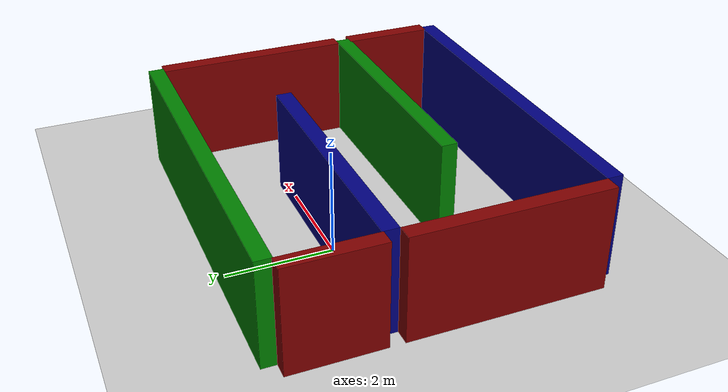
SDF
<sdf version="1.6">
 <world name="frsoty_world">
  <plugin name="ignition::gazebo::systems::TriggeredPublisher" filename="libignition-gazebo-triggered-publisher-system.so">
   <input type="ignition.msgs.Int32" topic="/keyboard/keypress"><match field="data">16777235</match></input>
   <output type="ignition.msgs.Twist" topic="/cmd_vel">linear: {x: 0.5}, angular: {z: 0.0}</output>
  </plugin>
  <plugin name="ignition::gazebo::systems::TriggeredPublisher" filename="libignition-gazebo-triggered-publisher-system.so">
   <input type="ignition.msgs.Int32" topic="/keyboard/keypress"><match field="data">16777237</match></input>
   <output type="ignition.msgs.Twist" topic="/cmd_vel">linear: {x: -0.5}, angular: {z: 0.0}</output>
  </plugin>
  <plugin name="ignition::gazebo::systems::TriggeredPublisher" filename="libignition-gazebo-triggered-publisher-system.so">
   <input type="ignition.msgs.Int32" topic="/keyboard/keypress"><match field="data">16777236</match></input>
   <output type="ignition.msgs.Twist" topic="/cmd_vel">linear: {x: 0.0}, angular: {z: -0.5}</output>
  </plugin>
  <plugin name="ignition::gazebo::systems::TriggeredPublisher" filename="libignition-gazebo-triggered-publisher-system.so">
   <input type="ignition.msgs.Int32" topic="/keyboard/keypress"><match field="data">16777234</match></input>
   <output type="ignition.msgs.Twist" topic="/cmd_vel">linear: {x: 0.0}, angular: {z: 0.5}</output>
  </plugin>
  <physics name="1ms" type="ignored">
   <max_step_size>0.001</max_step_size>
   <real_time_factor>1.0</real_time_factor>
  </physics>
  <plugin filename="libignition-gazebo-physics-system.so" name="ignition::gazebo::systems::Physics"/>
  <plugin filename="libignition-gazebo-scene-broadcaster-system.so" name="ignition::gazebo::systems::SceneBroadcaster"/>
  <plugin name="ignition::gazebo::systems::Sensors" filename="ignition-gazebo-sensors-system">
   <render_engine>ogre2</render_engine>
  </plugin>
  <gravity>0 0 -9.8</gravity>
  <magnetic_field>6e-06
    2.3e-05 -4.2e-05</magnetic_field>
  <atmosphere type="adiabatic"/>
  <light type="directional" name="sun">
   <pose>0 0 10 0 0 0</pose>
   <diffuse>0.8 0.8 0.8 1</diffuse>
   <specular>0.2 0.2 0.2 1</specular>
   <attenuation>
    <range>1000</range>
    <constant>0.9</constant>
    <linear>0.01</linear>
    <quadratic>0.001</quadratic>
   </attenuation>
   <direction>-0.5 0.1 -0.9</direction>
  </light>
  <model name="ground_plane">
   <static>1</static>
   <link name="ground">
    <collision name="collision">
     <geometry><plane><normal>0 0 1</normal><size>100 100</size></plane></geometry>
     <surface>
      <contact><collide_bitmask>65535</collide_bitmask></contact>
      <friction><ode><mu>100</mu><mu2>50</mu2></ode></friction>
     </surface>
    </collision>
    <visual name="visual">
     <cast_shadows>0</cast_shadows>
     <geometry><plane><normal>0 0 1</normal><size>100 100</size></plane></geometry>
     <material>
      <ambient>0.8 0.8 0.8 1</ambient>
      <diffuse>0.8 0.8 0.8 1</diffuse>
      <specular>0.8 0.8 0.8 1</specular>
     </material>
    </visual>
   </link>
  </model>
  <model name="box_1">
   <pose>0 0 1 0 0 0</pose>
   <link name="box_link_1">
    <collision name="box_collision"><geometry><box><size>5 0.3 2</size></box></geometry></collision>
    <visual name="visual">
     <geometry><box><size>5 0.3 2</size></box></geometry>
     <material><ambient>0 0 0.5 1</ambient><diffuse>0 0 0.5 1</diffuse><specular>0 0 0.5 1</specular></material>
    </visual>
   </link>
   <joint name="fixed_joint" type="fixed"><parent>world</parent><child>box_link_1</child></joint>
  </model>
  <model name="box_2">
   <pose>1 2 1 0 0 0</pose>
   <link name="box_link_2">
    <inertial>
     <inertia><ixx>1</ixx><ixy>0</ixy><ixz>0</ixz><iyy>1</iyy><iyz>0</iyz><izz>1</izz></inertia>
     <mass>1.0</mass>
    </inertial>
    <collision name="box_collision"><geometry><box><size>7 0.3 2</size></box></geometry></collision>
    <visual name="visual">
     <geometry><box><size>7 0.3 2</size></box></geometry>
     <material><ambient>0 0.5 0 1</ambient><diffuse>0 0.5 0 1</diffuse><specular>0 0.5 0 1</specular></material>
    </visual>
   </link>
   <joint name="fixed_joint" type="fixed"><parent>world</parent><child>box_link_2</child></joint>
  </model>
  <model name="box_3">
   <pose>4.5 0 1 0 0 1.57</pose>
   <link name="box_link_3">
    <inertial>
     <inertia><ixx>1</ixx><ixy>0</ixy><ixz>0</ixz><iyy>1</iyy><iyz>0</iyz><izz>1</izz></inertia>
     <mass>1.0</mass>
    </inertial>
    <collision name="box_collision"><geometry><box><size>3.7 0.3 2</size></box></geometry></collision>
    <visual name="visual">
     <geometry><box><size>3.7 0.3 2</size></box></geometry>
     <material><ambient>0.5 0 0 1</ambient><diffuse>0.5 0 0 1</diffuse><specular>0.5 0 0 1</specular></material>
    </visual>
   </link>
   <joint name="fixed_joint" type="fixed"><parent>world</parent><child>box_link_3</child></joint>
  </model>
  <model name="box_4">
   <pose>-2.65 1 1 0 0 1.57</pose>
   <link name="box_link_4">
    <inertial>
     <inertia><ixx>1</ixx><ixy>0</ixy><ixz>0</ixz><iyy>1</iyy><iyz>0</iyz><izz>1</izz></inertia>
     <mass>1.0</mass>
    </inertial>
    <collision name="box_collision"><geometry><box><size>1.75 0.3 2</size></box></geometry></collision>
    <visual name="visual">
     <geometry><box><size>1.75 0.3 2</size></box></geometry>
     <material><ambient>0.5 0 0 1</ambient><diffuse>0.5 0 0 1</diffuse><specular>0.5 0 0 1</specular></material>
    </visual>
   </link>
   <joint name="fixed_joint" type="fixed"><parent>world</parent><child>box_link_4</child></joint>
  </model>
  <model name="box_5">
   <pose>2 -2 1 0 0 0</pose>
   <link name="box_link_5">
    <inertial>
     <inertia><ixx>1</ixx><ixy>0</ixy><ixz>0</ixz><iyy>1</iyy><iyz>0</iyz><izz>1</izz></inertia>
     <mass>1.0</mass>
    </inertial>
    <collision name="box_collision"><geometry><box><size>5 0.3 2</size></box></geometry></collision>
    <visual name="visual">
     <geometry><box><size>5 0.3 2</size></box></geometry>
     <material><ambient>0 0.5 0 1</ambient><diffuse>0 0.5 0 1</diffuse><specular>0 0.5 0 1</specular></material>
    </visual>
   </link>
   <joint name="fixed_joint" type="fixed"><parent>world</parent><child>box_link_5</child></joint>
  </model>
  <model name="box_6">
   <pose>-2.65 -2 1 0 0 1.57</pose>
   <link name="box_link_6">
    <inertial>
     <inertia><ixx>1</ixx><ixy>0</ixy><ixz>0</ixz><iyy>1</iyy><iyz>0</iyz><izz>1</izz></inertia>
     <mass>1.0</mass>
    </inertial>
    <collision name="box_collision"><geometry><box><size>3.7 0.3 2</size></box></geometry></collision>
    <visual name="visual">
     <geometry><box><size>3.7 0.3 2</size></box></geometry>
     <material><ambient>0.5 0 0 1</ambient><diffuse>0.5 0 0 1</diffuse><specular>0.5 0 0 1</specular></material>
    </visual>
   </link>
   <joint name="fixed_joint" type="fixed"><parent>world</parent><child>box_link_6</child></joint>
  </model>
  <model name="box_7">
   <pose>1 -4 1 0 0 0</pose>
   <link name="box_link_7">
    <inertial>
     <inertia><ixx>1</ixx><ixy>0</ixy><ixz>0</ixz><iyy>1</iyy><iyz>0</iyz><izz>1</izz></inertia>
     <mass>1.0</mass>
    </inertial>
    <collision name="box_collision"><geometry><box><size>7 0.3 2</size></box></geometry></collision>
    <visual name="visual">
     <geometry><box><size>7 0.3 2</size></box></geometry>
     <material><ambient>0 0 0.5 1</ambient><diffuse>0 0 0.5 1</diffuse><specular>0 0 0.5 1</specular></material>
    </visual>
   </link>
   <joint name="fixed_joint" type="fixed"><parent>world</parent><child>box_link_7</child></joint>
  </model>
  <model name="box_8">
   <pose>4.5 -3 1 0 0 1.57</pose>
   <link name="box_link_8">
    <inertial>
     <inertia><ixx>1</ixx><ixy>0</ixy><ixz>0</ixz><iyy>1</iyy><iyz>0</iyz><izz>1</izz></inertia>
     <mass>1.0</mass>
    </inertial>
    <collision name="box_collision"><geometry><box><size>1.75 0.3 2</size></box></geometry></collision>
    <visual name="visual">
     <geometry><box><size>1.75 0.3 2</size></box></geometry>
     <material><ambient>0.5 0 0 1</ambient><diffuse>0.5 0 0 1</diffuse><specular>0.5 0 0 1</specular></material>
    </visual>
   </link>
   <joint name="fixed_joint" type="fixed"><parent>world</parent><child>box_link_8</child></joint>
  </model>
 </world>
</sdf>
